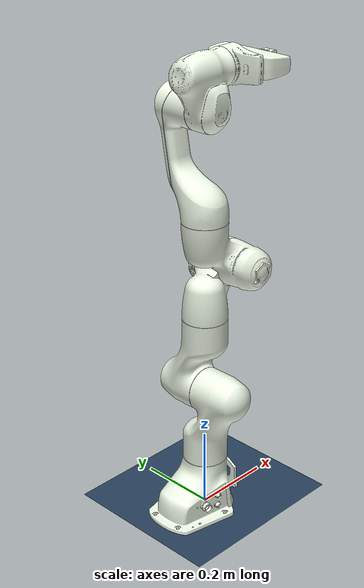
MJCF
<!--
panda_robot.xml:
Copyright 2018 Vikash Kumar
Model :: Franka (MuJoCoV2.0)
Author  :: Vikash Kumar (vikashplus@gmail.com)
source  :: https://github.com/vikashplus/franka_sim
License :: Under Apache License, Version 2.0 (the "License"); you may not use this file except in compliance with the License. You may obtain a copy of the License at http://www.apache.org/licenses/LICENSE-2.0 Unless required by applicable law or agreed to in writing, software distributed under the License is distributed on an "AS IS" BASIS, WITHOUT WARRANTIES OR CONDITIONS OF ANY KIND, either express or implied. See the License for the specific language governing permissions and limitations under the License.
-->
<mujoco model="panda_mujoco">

    <include file="assets/assets.xml"/>

    <worldbody>
        <include file="assets/basic_scene.xml" />
        <include file="assets/panda_robot.xml" />
    </worldbody>

    <include file = 'assets/panda_actuator.xml' />

    <keyframe>
        <key name="front" time="0" qpos ="0 0 0 0 0 0 0 0.04 0.04"/>
    </keyframe>

</mujoco>

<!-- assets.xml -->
<mujocoinclude>

    <compiler angle="radian" meshdir = "./meshes/"/>
	<size njmax="8000" nconmax="4000"/>
    <option timestep="0.0005"/>

    <asset>
        <texture name="texplane" type="2d" builtin="checker" rgb1=".2 .3 .4" rgb2=".1 0.2 0.3" width="512" height="512"/>
        <material name="MatGnd" reflectance="0.5" texture="texplane" texrepeat="1 1" texuniform="true"/>
    </asset>

    <asset>
        <mesh name="link0_col" file="collision/link0.stl"/>
        <mesh name="link1_col" file="collision/link1.stl"/>
        <mesh name="link2_col" file="collision/link2.stl"/>
        <mesh name="link3_col" file="collision/link3.stl"/>
        <mesh name="link4_col" file="collision/link4.stl"/>
        <mesh name="link5_col" file="collision/link5.stl"/>
        <mesh name="link6_col" file="collision/link6.stl"/>
        <mesh name="link7_col" file="collision/link7.stl"/>
        <mesh name="hand_col" file="collision/hand.stl"/>
        <mesh name="finger_col" file="collision/finger.stl"/>

        <mesh name="link0_viz" file="visual/link0.stl"/>
        <mesh name="link1_viz" file="visual/link1.stl"/>
        <mesh name="link2_viz" file="visual/link2.stl"/>
        <mesh name="link3_viz" file="visual/link3.stl"/>
        <mesh name="link4_viz" file="visual/link4.stl"/>
        <mesh name="link5_viz" file="visual/link5.stl"/>
        <mesh name="link6_viz" file="visual/link6.stl"/>
        <mesh name="link7_viz" file="visual/link7.stl"/>
        <mesh name="hand_viz" file="visual/hand.stl"/>
        <mesh name="finger_viz" file="visual/finger.stl"/>
    </asset>

    <default>
        <default class="panda">
        <joint pos="0 0 0" axis="0 0 1" limited="true"/>
        <position forcelimited="true" ctrllimited="true" user="1002 40 2001 -0.005 0.005"/>
            <default class="panda_viz">
            <geom contype="0" conaffinity="0" group="0" type="mesh" rgba=".95 .99 .92 1" mass="0"/>
            </default>

            <default class="panda_col">
            <geom contype="1" conaffinity="1" group="3" type="mesh" rgba=".5 .6 .7 1"/>
            </default>

            <default class="panda_arm">
            <joint damping="100"/>
            </default>

            <default class="panda_forearm">
                <joint damping="10"/>
            </default>

            <default class="panda_finger">
                <joint damping="100" stiffness="500.0" springref="0.0" armature="5.0"/>
                <geom friction="1.0 1.0 1.0"  user="0" rgba="0.6 0.3 0.0 1.0" contype="1" conaffinity="1" group="3"/>
                <position user="1002 40 2001 -0.0001 0.0001"/>
            </default>
        </default>
    </default>

</mujocoinclude>

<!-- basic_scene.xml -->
<mujocoinclude>

    <geom name="ground" pos="0 0 0" size="5 5 10" material="MatGnd" type="plane"
    contype="1" conaffinity="1" condim = "3" friction = "1.0 1.0 1.0"/>

    <light directional="false" diffuse=".8 .8 .8" specular="0.3 0.3 0.3" pos="1  1 3" dir="-1 -1 -3"/>
    <light directional="false" diffuse=".8 .8 .8" specular="0.3 0.3 0.3" pos="1 -1 3" dir="-1 1 -3"/>
    <light directional="false" diffuse=".8 .8 .8" specular="0.3 0.3 0.3" pos="-1 0 3" dir="1 0 -3" />

</mujocoinclude>

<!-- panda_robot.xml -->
<mujocoinclude>

<!-- Robot limits pulled from https://frankaemika.github.io/docs/control_parameters.html#constants -->

<body name="panda0_link0" childclass="panda" pos="0 0 0" quat="1 0 0 0">
    <inertial pos="0 0 0" mass="2.91242" diaginertia="0.01 0.01 0.01"/>
    <geom class="panda_viz" mesh="link0_viz"/>
    <geom class="panda_col" mesh="link0_col" mass="2.91242"/>
        <body name="panda0_link1" pos="0 0 0.333">
        <inertial pos="0 0 0" mass="2.7063" diaginertia="0.01 0.01 0.01"/>
        <joint name="panda0_joint1" range="-2.8973 2.8973" class="panda_arm"/>
        <geom class="panda_viz" mesh="link1_viz"/>
        <geom class="panda_col" mesh="link1_col" mass="2.7063"/>
            <body name="panda0_link2" pos="0 0 0" euler="-1.57 0 0">
            <inertial pos="0 0 0" mass="2.73046" diaginertia="0.01 0.01 0.01"/>
            <joint name="panda0_joint2" range="-1.7628 1.7628" class="panda_arm"/>
            <geom class="panda_viz" mesh="link2_viz"/>
            <geom class="panda_col" mesh="link2_col" mass="2.73046"/>
                <body name="panda0_link3" pos="0 -0.316 0" euler="1.57 0 0">
                <inertial pos="0 0 0" mass="2.04104" diaginertia="0.01 0.01 0.01"/>
                <joint name="panda0_joint3" range="-2.8973 2.8973" class="panda_arm"/>
                <geom class="panda_viz" mesh="link3_viz"/>
                <geom class="panda_col" mesh="link3_col" mass="2.04104"/>
                    <body name="panda0_link4" pos="0.0825 0 0" euler="1.57 0 0">
                    <inertial pos="0 0 0" mass="2.08129" diaginertia="0.01 0.01 0.01"/>
                    <joint name="panda0_joint4" range="-3.0718 0.0698" class="panda_arm"/>
                    <geom class="panda_viz" mesh="link4_viz"/>
                    <geom class="panda_col" mesh="link4_col" mass="2.08129"/>
                        <body name="panda0_link5" pos="-0.0825 0.384 0" euler="-1.57 0 0">
                        <inertial pos="0 0 0" mass="3.00049" diaginertia="0.01 0.01 0.01"/>
                        <joint name="panda0_joint5" range="-2.8973 2.8973" class="panda_forearm"/>
                        <geom class="panda_viz" mesh="link5_viz"/>
                        <geom class="panda_col" mesh="link5_col" mass="3.00049"/>
                            <body name="panda0_link6" pos="0 0 0" euler="1.57 0 1.57">
                            <inertial pos="0 0 0" mass="1.3235" diaginertia="0.01 0.01 0.01"/>
                            <joint name="panda0_joint6" range="-1.6573 2.1127" class="panda_forearm"/>
                            <geom class="panda_viz" mesh="link6_viz"/>
                            <geom class="panda_col" mesh="link6_col" mass="1.3235"/>
                                <body name="panda0_link7" pos="0.088 0 0" euler="1.57 0 0.7854">
                                <inertial pos="0 0 0" mass="0.2" diaginertia="0.01 0.01 0.01"/>
                                <joint name="panda0_joint7" range="-2.8973 2.8973" axis="0 0 1" class="panda_forearm"/>
                                <geom class="panda_viz" mesh="link7_viz"/>
                                <geom class="panda_col" mesh="link7_col" mass="0.2"/>

                                <!-- End Effector -->
                                <body name="panda0_gripper">
                                    <geom pos="0 0 0.107" quat="0.92388 0 0 -0.382683" class="panda_viz" mesh="hand_viz"/>
                                    <geom pos="0 0 0.107" quat="0.92388 0 0 -0.382683" class="panda_col" mesh="hand_col" mass="0.81909"/>

                                    <body name="panda0_leftfinger" pos="0 0 0.1654" quat="0.92388 0 0 -0.382683" childclass="panda_finger">
                                        <inertial pos="-1.57863e-05 0.0118731 0.0434103" quat="0.705868 0.0310348 -0.0314925 0.706962" mass="0.0927059" diaginertia="6.57134e-05 6.09611e-05 1.09932e-05" />
                                        <joint name="panda0_finger_joint1"  axis="0 1 0" type="slide" range="0 0.04" class="panda_finger"/>
                                        <geom class="panda_viz" mesh="finger_viz"/>
                                        <geom class="panda_col" mesh="finger_col"/>
                                        <body name = "panda0_left_fingertip" pos="0 0 0.045" euler="1.57 0 0">
                                            <geom type = "box" pos = "0 0 0.02" size = "0.02 0.02 0.02"/>

                                            <site name = "left_FT"  size = "0.009 0.001" rgba = ".1 .1 .9 1" type = "cylinder" />
                                        </body>
                                    </body>

                                    <body name="panda0_rightfinger" pos="0 0 0.1654" quat="0.92388 0 0 -0.382683"  childclass="panda_finger">
                                        <inertial pos="1.57863e-05 -0.0118731 0.0434103" quat="0.705868 -0.0310348 0.0314925 0.706962" mass="0.0927059" diaginertia="6.57134e-05 6.09611e-05 1.09932e-05" />
                                        <joint name="panda0_finger_joint2" axis="0 -1 0" type="slide" range="0 0.04" class="panda_finger"/>
                                        <geom quat="0 0 0 1" class="panda_viz" mesh="finger_viz"/>
                                        <geom quat="0 0 0 1" class="panda_col" mesh="finger_col"/>
                                    </body>
                                </body>
                                </body>
                            </body>
                        </body>
                    </body>
                </body>
            </body>
        </body>
    </body>

</mujocoinclude>

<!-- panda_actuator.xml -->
<mujocoinclude>

    <equality>
        <joint joint1="panda0_finger_joint1" joint2="panda0_finger_joint2" solimp="0.95 0.99 0.001" solref="0.005 1"/>
    </equality>

    <actuator>
        <position name="panda0_joint1" joint="panda0_joint1" class="panda" kp="870" forcerange="-87 87" ctrlrange="-2.9671 2.9671"/>
        <position name="panda0_joint2" joint="panda0_joint2" class="panda" kp="870" forcerange="-87 87" ctrlrange="-1.8326 1.8326"/>
        <position name="panda0_joint3" joint="panda0_joint3" class="panda" kp="870" forcerange="-87 87" ctrlrange="-2.9671 2.9671"/>
        <position name="panda0_joint4" joint="panda0_joint4" class="panda" kp="870" forcerange="-87 87" ctrlrange="-3.1416 0.0"/>
        <position name="panda0_joint5" joint="panda0_joint5" class="panda" kp="120" forcerange="-12 12" ctrlrange="-2.9671 2.9671"/>
        <position name="panda0_joint6" joint="panda0_joint6" class="panda" kp="120" forcerange="-12 12" ctrlrange="-1.66 2.1817"/>
        <position name="panda0_joint7" joint="panda0_joint7" class="panda" kp="120" forcerange="-12 12" ctrlrange="-2.9671 2.9671"/>

        <position name="l_gripper_finger_joint" joint="panda0_finger_joint1" class="panda_finger" kp="500" forcerange="-100 100" ctrlrange="0 0.04"/>
        <position name="r_gripper_finger_joint" joint="panda0_finger_joint2" class="panda_finger" kp="500" forcerange="-100 100" ctrlrange="0 0.04"/>
    </actuator>

    <sensor>
        <force name = "Force_sensor" site="left_FT" />
        <torque name = "Torque_sensor" site="left_FT" />
    </sensor>

</mujocoinclude>
